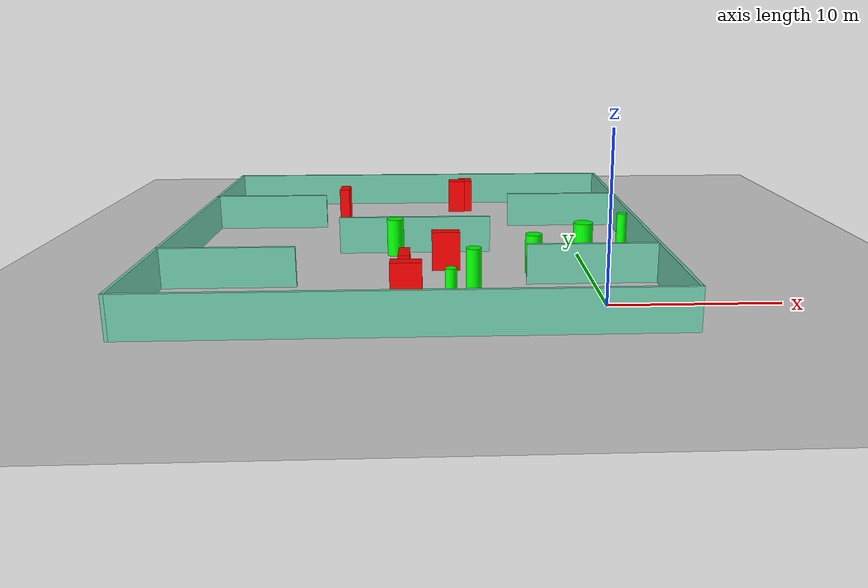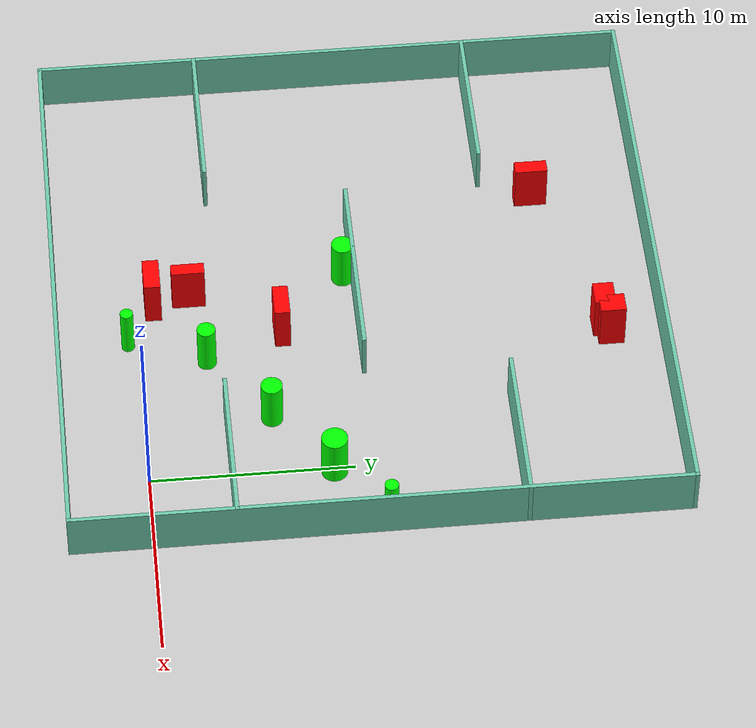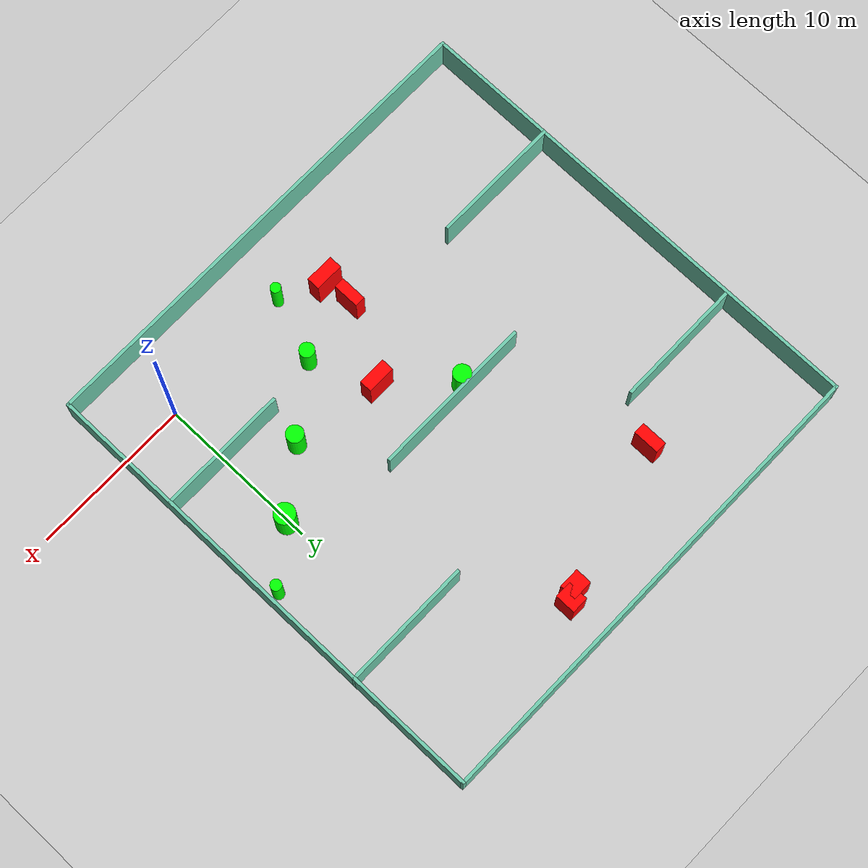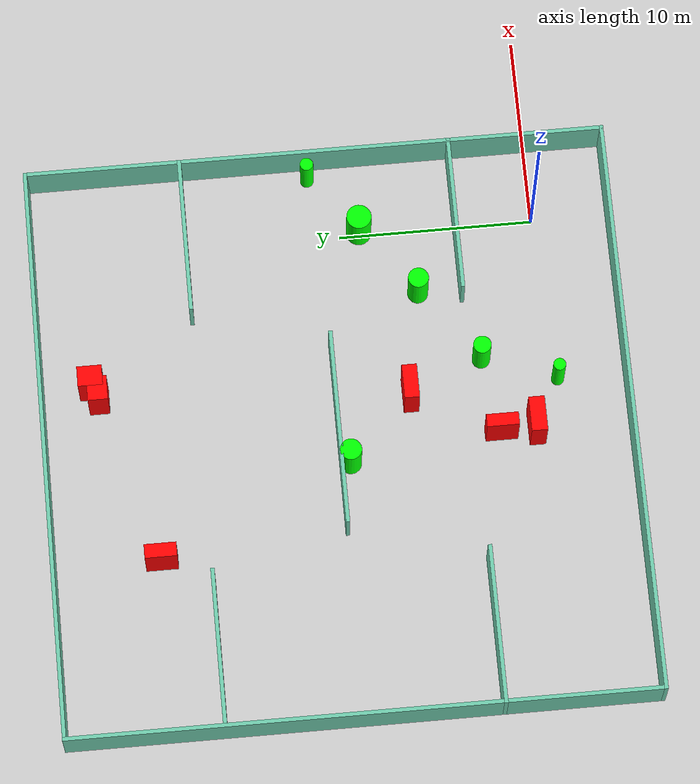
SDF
<sdf version="1.7">
 <world name="default">
  <light name="sun" type="directional">
   <pose>0 0 10 0 -0 0</pose>
   <diffuse>0.8 0.8 0.8 1</diffuse>
   <specular>0.2 0.2 0.2 1</specular>
   <attenuation>
    <range>1000</range>
    <constant>0.9</constant>
    <linear>0.01</linear>
    <quadratic>0.001</quadratic>
   </attenuation>
   <direction>-0.5 0.1 -0.9</direction>
   <spot><inner_angle>0</inner_angle><outer_angle>0</outer_angle><falloff>0</falloff></spot>
  </light>
  <model name="ground_plane">
   <static>1</static>
   <link name="link">
    <collision name="collision">
     <geometry><plane><normal>0 0 1</normal><size>100 100</size></plane></geometry>
     <surface>
      <contact><collide_bitmask>65535</collide_bitmask></contact>
      <friction><ode><mu>100</mu><mu2>50</mu2></ode></friction>
     </surface>
    </collision>
    <visual name="visual">
     <cast_shadows>0</cast_shadows>
     <geometry><plane><normal>0 0 1</normal><size>100 100</size></plane></geometry>
     <material>
      <script><uri>file://media/materials/scripts/gazebo.material</uri><name>Gazebo/Grey</name></script>
     </material>
    </visual>
   </link>
  </model>
  <gravity>0 0 -9.8</gravity>
  <magnetic_field>6e-06 2.3e-05 -4.2e-05</magnetic_field>
  <atmosphere type="adiabatic"/>
  <physics type="ode">
   <max_step_size>0.001</max_step_size>
   <real_time_factor>1</real_time_factor>
   <real_time_update_rate>1000</real_time_update_rate>
  </physics>
  <scene><ambient>0.4 0.4 0.4 1</ambient><background>0.7 0.7 0.7 1</background><shadows>1</shadows></scene>
  <spherical_coordinates>
   <surface_model>EARTH_WGS84</surface_model>
   <latitude_deg>0</latitude_deg>
   <longitude_deg>0</longitude_deg>
   <elevation>0</elevation>
   <heading_deg>0</heading_deg>
  </spherical_coordinates>
  <model name="my_base_walls">
   <link name="Wall_10">
    <collision name="Wall_10_Collision">
     <geometry><box><size>8.2 0.2 2.5</size></box></geometry>
     <pose>0 0 1.25 0 -0 0</pose>
    </collision>
    <visual name="Wall_10_Visual">
     <pose>0 0 1.25 0 -0 0</pose>
     <geometry><box><size>8.2 0.2 2.5</size></box></geometry>
     <material>
      <script><uri>file://media/materials/scripts/gazebo.material</uri><name>Gazebo/Grey</name></script>
      <ambient>0.435294 0.796078 0.67451 1</ambient>
     </material>
     <meta><layer>0</layer></meta>
    </visual>
    <pose>-11 -7 0 0 -0 0</pose>
   </link>
   <link name="Wall_12">
    <collision name="Wall_12_Collision">
     <geometry><box><size>8.2 0.2 2.5</size></box></geometry>
     <pose>0 0 1.25 0 -0 0</pose>
    </collision>
    <visual name="Wall_12_Visual">
     <pose>0 0 1.25 0 -0 0</pose>
     <geometry><box><size>8.2 0.2 2.5</size></box></geometry>
     <material>
      <script><uri>file://media/materials/scripts/gazebo.material</uri><name>Gazebo/Grey</name></script>
      <ambient>0.435294 0.796078 0.67451 1</ambient>
     </material>
     <meta><layer>0</layer></meta>
    </visual>
    <pose>-11 7 0 0 -0 0</pose>
   </link>
   <link name="Wall_14">
    <collision name="Wall_14_Collision">
     <geometry><box><size>8.2 0.2 2.5</size></box></geometry>
     <pose>0 0 1.25 0 -0 0</pose>
    </collision>
    <visual name="Wall_14_Visual">
     <pose>0 0 1.25 0 -0 0</pose>
     <geometry><box><size>8.2 0.2 2.5</size></box></geometry>
     <material>
      <script><uri>file://media/materials/scripts/gazebo.material</uri><name>Gazebo/Grey</name></script>
      <ambient>0.435294 0.796078 0.67451 1</ambient>
     </material>
     <meta><layer>0</layer></meta>
    </visual>
    <pose>11 7 0 0 -0 3.14159</pose>
   </link>
   <link name="Wall_16">
    <collision name="Wall_16_Collision">
     <geometry><box><size>10.2 0.2 2.5</size></box></geometry>
     <pose>0 0 1.25 0 -0 0</pose>
    </collision>
    <visual name="Wall_16_Visual">
     <pose>0 0 1.25 0 -0 0</pose>
     <geometry><box><size>10.2 0.2 2.5</size></box></geometry>
     <material>
      <script><uri>file://media/materials/scripts/gazebo.material</uri><name>Gazebo/Grey</name></script>
      <ambient>0.435294 0.796078 0.67451 1</ambient>
     </material>
     <meta><layer>0</layer></meta>
    </visual>
    <pose>0 0 0 0 -0 3.14159</pose>
   </link>
   <link name="Wall_2">
    <collision name="Wall_2_Collision">
     <geometry><box><size>30.2 0.2 2.5</size></box></geometry>
     <pose>0 0 1.25 0 -0 0</pose>
    </collision>
    <visual name="Wall_2_Visual">
     <pose>0 0 1.25 0 -0 0</pose>
     <geometry><box><size>30.2 0.2 2.5</size></box></geometry>
     <material>
      <script><uri>file://media/materials/scripts/gazebo.material</uri><name>Gazebo/Grey</name></script>
      <ambient>0.435294 0.796078 0.67451 1</ambient>
     </material>
     <meta><layer>0</layer></meta>
    </visual>
    <pose>0 -15 0 0 -0 3.14159</pose>
   </link>
   <link name="Wall_3">
    <collision name="Wall_3_Collision">
     <geometry><box><size>30.2 0.2 2.5</size></box></geometry>
     <pose>0 0 1.25 0 -0 0</pose>
    </collision>
    <visual name="Wall_3_Visual">
     <pose>0 0 1.25 0 -0 0</pose>
     <geometry><box><size>30.2 0.2 2.5</size></box></geometry>
     <material>
      <script><uri>file://media/materials/scripts/gazebo.material</uri><name>Gazebo/Grey</name></script>
      <ambient>0.435294 0.796078 0.67451 1</ambient>
     </material>
     <meta><layer>0</layer></meta>
    </visual>
    <pose>-15 0 0 0 -0 1.5708</pose>
   </link>
   <link name="Wall_4">
    <collision name="Wall_4_Collision">
     <geometry><box><size>30.2 0.2 2.5</size></box></geometry>
     <pose>0 0 1.25 0 -0 0</pose>
    </collision>
    <visual name="Wall_4_Visual">
     <pose>0 0 1.25 0 -0 0</pose>
     <geometry><box><size>30.2 0.2 2.5</size></box></geometry>
     <material>
      <script><uri>file://media/materials/scripts/gazebo.material</uri><name>Gazebo/Grey</name></script>
      <ambient>0.435294 0.796078 0.67451 1</ambient>
     </material>
     <meta><layer>0</layer></meta>
    </visual>
    <pose>0 15 0 0 -0 0</pose>
   </link>
   <link name="Wall_6">
    <collision name="Wall_6_Collision">
     <geometry><box><size>30.2 0.2 2.5</size></box></geometry>
     <pose>0 0 1.25 0 -0 0</pose>
    </collision>
    <visual name="Wall_6_Visual">
     <pose>0 0 1.25 0 -0 0</pose>
     <geometry><box><size>30.2 0.2 2.5</size></box></geometry>
     <material>
      <script><uri>file://media/materials/scripts/gazebo.material</uri><name>Gazebo/Grey</name></script>
      <ambient>0.435294 0.796078 0.67451 1</ambient>
     </material>
     <meta><layer>0</layer></meta>
    </visual>
    <pose>15 0 0 0 -0 1.5708</pose>
   </link>
   <link name="Wall_8">
    <collision name="Wall_8_Collision">
     <geometry><box><size>8.2 0.2 2.5</size></box></geometry>
     <pose>0 0 1.25 0 -0 0</pose>
    </collision>
    <visual name="Wall_8_Visual">
     <pose>0 0 1.25 0 -0 0</pose>
     <geometry><box><size>8.2 0.2 2.5</size></box></geometry>
     <material>
      <script><uri>file://media/materials/scripts/gazebo.material</uri><name>Gazebo/Grey</name></script>
      <ambient>0.435294 0.796078 0.67451 1</ambient>
     </material>
     <meta><layer>0</layer></meta>
    </visual>
    <pose>11 -7 0 0 -0 3.14159</pose>
   </link>
   <static>1</static>
   <pose>-11 11 0 0 -0 0</pose>
  </model>
  <model name="cylinder1">
   <static>1</static>
   <link name="link">
    <inertial>
     <mass>1</mass>
     <inertia><ixx>0.5</ixx><ixy>0</ixy><ixz>0</ixz><iyy>0.5</iyy><iyz>0</iyz><izz>1</izz></inertia>
    </inertial>
    <collision name="collision">
     <geometry><cylinder><radius>0.3209364882644663</radius><length>2.5</length></cylinder></geometry>
    </collision>
    <visual name="visual">
     <geometry><cylinder><radius>0.3209364882644663</radius><length>2.5</length></cylinder></geometry>
     <material>
      <ambient>0 1 0 1</ambient>
      <diffuse>0 1 0 1</diffuse>
      <specular>0.1 0.1 0.1 1</specular>
      <emissive>0 0 0 0</emissive>
     </material>
    </visual>
   </link>
   <pose>-8.720590826828886 -0.5029998276891972 1.25 0 0 0</pose>
  </model>
  <model name="cylinder2">
   <static>1</static>
   <link name="link">
    <inertial>
     <mass>1</mass>
     <inertia><ixx>0.5</ixx><ixy>0</ixy><ixz>0</ixz><iyy>0.5</iyy><iyz>0</iyz><izz>1</izz></inertia>
    </inertial>
    <collision name="collision">
     <geometry><cylinder><radius>0.46113049722909116</radius><length>2.5</length></cylinder></geometry>
    </collision>
    <visual name="visual">
     <geometry><cylinder><radius>0.46113049722909116</radius><length>2.5</length></cylinder></geometry>
     <material>
      <ambient>0 1 0 1</ambient>
      <diffuse>0 1 0 1</diffuse>
      <specular>0.1 0.1 0.1 1</specular>
      <emissive>0 0 0 0</emissive>
     </material>
    </visual>
   </link>
   <pose>-7.322568324893302 3.3255033769750186 1.25 0 0 0</pose>
  </model>
  <model name="cylinder3">
   <static>1</static>
   <link name="link">
    <inertial>
     <mass>1</mass>
     <inertia><ixx>0.5</ixx><ixy>0</ixy><ixz>0</ixz><iyy>0.5</iyy><iyz>0</iyz><izz>1</izz></inertia>
    </inertial>
    <collision name="collision">
     <geometry><cylinder><radius>0.6461229622042926</radius><length>2.5</length></cylinder></geometry>
    </collision>
    <visual name="visual">
     <geometry><cylinder><radius>0.6461229622042926</radius><length>2.5</length></cylinder></geometry>
     <material>
      <ambient>0 1 0 1</ambient>
      <diffuse>0 1 0 1</diffuse>
      <specular>0.1 0.1 0.1 1</specular>
      <emissive>0 0 0 0</emissive>
     </material>
    </visual>
   </link>
   <pose>0.16952021475504253 8.98076333024242 1.25 0 0 0</pose>
  </model>
  <model name="cylinder4">
   <static>1</static>
   <link name="link">
    <inertial>
     <mass>1</mass>
     <inertia><ixx>0.5</ixx><ixy>0</ixy><ixz>0</ixz><iyy>0.5</iyy><iyz>0</iyz><izz>1</izz></inertia>
    </inertial>
    <collision name="collision">
     <geometry><cylinder><radius>0.5323770346132964</radius><length>2.5</length></cylinder></geometry>
    </collision>
    <visual name="visual">
     <geometry><cylinder><radius>0.5323770346132964</radius><length>2.5</length></cylinder></geometry>
     <material>
      <ambient>0 1 0 1</ambient>
      <diffuse>0 1 0 1</diffuse>
      <specular>0.1 0.1 0.1 1</specular>
      <emissive>0 0 0 0</emissive>
     </material>
    </visual>
   </link>
   <pose>-3.419806698823262 6.235437754756074 1.25 0 0 0</pose>
  </model>
  <model name="cylinder5">
   <static>1</static>
   <link name="link">
    <inertial>
     <mass>1</mass>
     <inertia><ixx>0.5</ixx><ixy>0</ixy><ixz>0</ixz><iyy>0.5</iyy><iyz>0</iyz><izz>1</izz></inertia>
    </inertial>
    <collision name="collision">
     <geometry><cylinder><radius>0.34226995903859164</radius><length>2.5</length></cylinder></geometry>
    </collision>
    <visual name="visual">
     <geometry><cylinder><radius>0.34226995903859164</radius><length>2.5</length></cylinder></geometry>
     <material>
      <ambient>0 1 0 1</ambient>
      <diffuse>0 1 0 1</diffuse>
      <specular>0.1 0.1 0.1 1</specular>
      <emissive>0 0 0 0</emissive>
     </material>
    </visual>
   </link>
   <pose>3.29525581393073 11.423921107243027 1.25 0 0 0</pose>
  </model>
  <model name="cylinder6">
   <static>1</static>
   <link name="link">
    <inertial>
     <mass>1</mass>
     <inertia><ixx>0.5</ixx><ixy>0</ixy><ixz>0</ixz><iyy>0.5</iyy><iyz>0</iyz><izz>1</izz></inertia>
    </inertial>
    <collision name="collision">
     <geometry><cylinder><radius>0.5554129589742136</radius><length>2.5</length></cylinder></geometry>
    </collision>
    <visual name="visual">
     <geometry><cylinder><radius>0.5554129589742136</radius><length>2.5</length></cylinder></geometry>
     <material>
      <ambient>0 1 0 1</ambient>
      <diffuse>0 1 0 1</diffuse>
      <specular>0.1 0.1 0.1 1</specular>
      <emissive>0 0 0 0</emissive>
     </material>
    </visual>
   </link>
   <pose>-12.298390530654878 10.5052365473074 1.25 0 0 0</pose>
  </model>
  <model name="box1">
   <static>1</static>
   <link name="link">
    <inertial>
     <mass>1</mass>
     <inertia><ixx>0.083</ixx><ixy>0</ixy><ixz>0</ixz><iyy>0.083</iyy><iyz>0</iyz><izz>0.083</izz></inertia>
    </inertial>
    <collision name="collision">
     <geometry><box><size>0.7223348318504487 1.636611951620748 2.5</size></box></geometry>
    </collision>
    <visual name="visual">
     <geometry><box><size>0.7223348318504487 1.636611951620748 2.5</size></box></geometry>
     <material>
      <ambient>1 0 0 1</ambient>
      <diffuse>1 0 0 1</diffuse>
      <specular>0.1 0.1 0.1 1</specular>
      <emissive>0 0 0 0</emissive>
     </material>
    </visual>
    <sensor name="my_contact" type="contact">
     <contact><collision>box_collision</collision><topic>__default_topic__</topic></contact>
    </sensor>
   </link>
   <pose>-16.73029669771147 20.52170687510365 1.25 0 0 0</pose>
  </model>
  <model name="box2">
   <static>1</static>
   <link name="link">
    <inertial>
     <mass>1</mass>
     <inertia><ixx>0.083</ixx><ixy>0</ixy><ixz>0</ixz><iyy>0.083</iyy><iyz>0</iyz><izz>0.083</izz></inertia>
    </inertial>
    <collision name="collision">
     <geometry><box><size>1.8042231408279727 0.8234098213625406 2.5</size></box></geometry>
    </collision>
    <visual name="visual">
     <geometry><box><size>1.8042231408279727 0.8234098213625406 2.5</size></box></geometry>
     <material>
      <ambient>1 0 0 1</ambient>
      <diffuse>1 0 0 1</diffuse>
      <specular>0.1 0.1 0.1 1</specular>
      <emissive>0 0 0 0</emissive>
     </material>
    </visual>
    <sensor name="my_contact" type="contact">
     <contact><collision>box_collision</collision><topic>__default_topic__</topic></contact>
    </sensor>
   </link>
   <pose>-11.230487694783402 0.8658819860624027 1.25 0 0 0</pose>
  </model>
  <model name="box3">
   <static>1</static>
   <link name="link">
    <inertial>
     <mass>1</mass>
     <inertia><ixx>0.083</ixx><ixy>0</ixy><ixz>0</ixz><iyy>0.083</iyy><iyz>0</iyz><izz>0.083</izz></inertia>
    </inertial>
    <collision name="collision">
     <geometry><box><size>1.2790428450445175 1.0332282590641122 2.5</size></box></geometry>
    </collision>
    <visual name="visual">
     <geometry><box><size>1.2790428450445175 1.0332282590641122 2.5</size></box></geometry>
     <material>
      <ambient>1 0 0 1</ambient>
      <diffuse>1 0 0 1</diffuse>
      <specular>0.1 0.1 0.1 1</specular>
      <emissive>0 0 0 0</emissive>
     </material>
    </visual>
    <sensor name="my_contact" type="contact">
     <contact><collision>box_collision</collision><topic>__default_topic__</topic></contact>
    </sensor>
   </link>
   <pose>-7.889201483123204 23.100385654570413 1.25 0 0 0</pose>
  </model>
  <model name="box4">
   <static>1</static>
   <link name="link">
    <inertial>
     <mass>1</mass>
     <inertia><ixx>0.083</ixx><ixy>0</ixy><ixz>0</ixz><iyy>0.083</iyy><iyz>0</iyz><izz>0.083</izz></inertia>
    </inertial>
    <collision name="collision">
     <geometry><box><size>1.0529960453399028 1.2715636323883754 2.5</size></box></geometry>
    </collision>
    <visual name="visual">
     <geometry><box><size>1.0529960453399028 1.2715636323883754 2.5</size></box></geometry>
     <material>
      <ambient>1 0 0 1</ambient>
      <diffuse>1 0 0 1</diffuse>
      <specular>0.1 0.1 0.1 1</specular>
      <emissive>0 0 0 0</emissive>
     </material>
    </visual>
    <sensor name="my_contact" type="contact">
     <contact><collision>box_collision</collision><topic>__default_topic__</topic></contact>
    </sensor>
   </link>
   <pose>-7.207139850447714 23.427259158029813 1.25 0 0 0</pose>
  </model>
  <model name="box5">
   <static>1</static>
   <link name="link">
    <inertial>
     <mass>1</mass>
     <inertia><ixx>0.083</ixx><ixy>0</ixy><ixz>0</ixz><iyy>0.083</iyy><iyz>0</iyz><izz>0.083</izz></inertia>
    </inertial>
    <collision name="collision">
     <geometry><box><size>1.7728398437495272 0.7785149349850107 2.5</size></box></geometry>
    </collision>
    <visual name="visual">
     <geometry><box><size>1.7728398437495272 0.7785149349850107 2.5</size></box></geometry>
     <material>
      <ambient>1 0 0 1</ambient>
      <diffuse>1 0 0 1</diffuse>
      <specular>0.1 0.1 0.1 1</specular>
      <emissive>0 0 0 0</emissive>
     </material>
    </visual>
    <sensor name="my_contact" type="contact">
     <contact><collision>box_collision</collision><topic>__default_topic__</topic></contact>
    </sensor>
   </link>
   <pose>-8.934586044446615 7.156975995175589 1.25 0 0 0</pose>
  </model>
  <model name="box6">
   <static>1</static>
   <link name="link">
    <inertial>
     <mass>1</mass>
     <inertia><ixx>0.083</ixx><ixy>0</ixy><ixz>0</ixz><iyy>0.083</iyy><iyz>0</iyz><izz>0.083</izz></inertia>
    </inertial>
    <collision name="collision">
     <geometry><box><size>0.6586788481041685 1.6631032910401864 2.5</size></box></geometry>
    </collision>
    <visual name="visual">
     <geometry><box><size>0.6586788481041685 1.6631032910401864 2.5</size></box></geometry>
     <material>
      <ambient>1 0 0 1</ambient>
      <diffuse>1 0 0 1</diffuse>
      <specular>0.1 0.1 0.1 1</specular>
      <emissive>0 0 0 0</emissive>
     </material>
    </visual>
    <sensor name="my_contact" type="contact">
     <contact><collision>box_collision</collision><topic>__default_topic__</topic></contact>
    </sensor>
   </link>
   <pose>-11.393114291663748 2.6833750274763766 1.25 0 0 0</pose>
  </model>
 </world>
</sdf>
